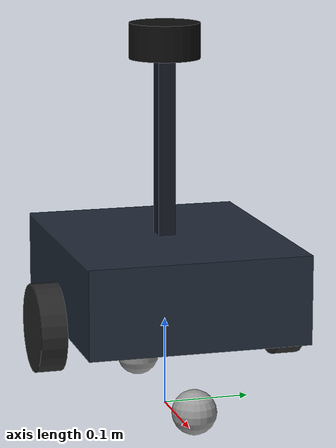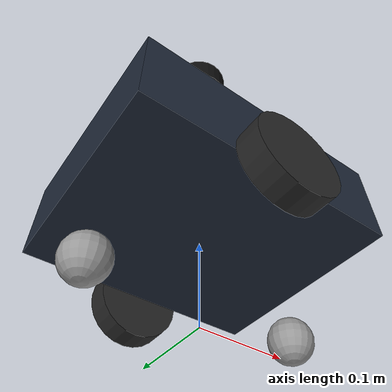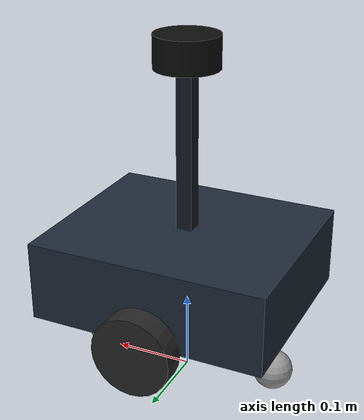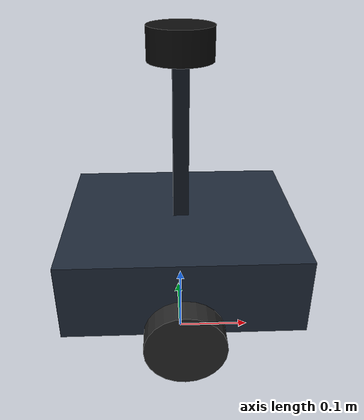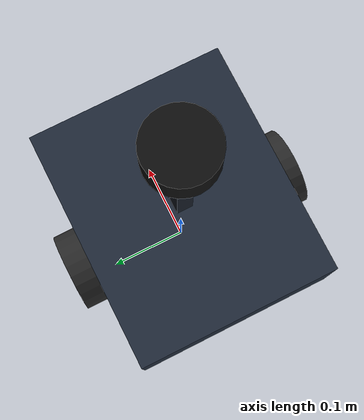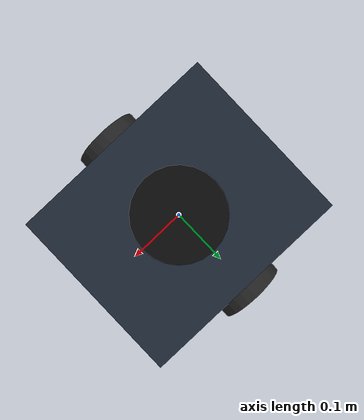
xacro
<?xml version="1.0"?>
<robot name="frontierx_scout" xmlns:xacro="http://www.ros.org/wiki/xacro">

  <!-- ── Parameters ────────────────────────────────────────── -->
  <xacro:include filename="$(find frontierx_robot_description)/urdf/scout_base.xacro"/>
  <xacro:include filename="$(find frontierx_robot_description)/urdf/scout_sensors.xacro"/>
  <xacro:include filename="$(find frontierx_robot_description)/urdf/scout_gazebo.xacro"/>

  <!-- ── Instantiate robot ─────────────────────────────────── -->
  <xacro:frontierx_scout_base/>
  <xacro:frontierx_scout_sensors/>
  <xacro:frontierx_scout_gazebo/>

</robot>

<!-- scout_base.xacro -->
<robot name="frontierx_scout" xmlns:xacro="http://www.ros.org/wiki/xacro">

  <!-- ── Physical Constants ────────────────────────────────── -->
  <xacro:property name="base_length"    value="0.300"/>   <!-- meters, X -->
  <xacro:property name="base_width"     value="0.250"/>   <!-- meters, Y -->
  <xacro:property name="base_height"    value="0.100"/>   <!-- meters, Z -->
  <xacro:property name="base_mass"      value="2.500"/>   <!-- kg -->
  <xacro:property name="base_z_offset"  value="0.100"/>   <!-- base_link above floor -->

  <xacro:property name="wheel_radius"   value="0.050"/>   <!-- meters -->
  <xacro:property name="wheel_width"    value="0.030"/>   <!-- meters -->
  <xacro:property name="wheel_mass"     value="0.200"/>   <!-- kg -->
  <xacro:property name="wheel_sep"      value="0.280"/>   <!-- left-right separation -->
  <xacro:property name="wheel_x_offset" value="0.000"/>   <!-- fore-aft offset from base_link -->

  <xacro:property name="caster_radius"  value="0.025"/>
  <xacro:property name="caster_mass"    value="0.050"/>
  <xacro:property name="caster_x_front" value="0.120"/>   <!-- distance forward from base_link -->
  <xacro:property name="caster_x_rear"  value="-0.120"/>   <!-- distance backward from base_link -->

  <!-- ── Inertia Macros ─────────────────────────────────────── -->
  <xacro:macro name="box_inertia" params="m x y z">
    <inertial>
      <mass value="${m}"/>
      <inertia
        ixx="${m*(y*y+z*z)/12.0}"
        ixy="0" ixz="0"
        iyy="${m*(x*x+z*z)/12.0}"
        iyz="0"
        izz="${m*(x*x+y*y)/12.0}"/>
    </inertial>
  </xacro:macro>

  <xacro:macro name="cylinder_inertia" params="m r h">
    <inertial>
      <mass value="${m}"/>
      <inertia
        ixx="${m*(3*r*r+h*h)/12.0}"
        ixy="0" ixz="0"
        iyy="${m*(3*r*r+h*h)/12.0}"
        iyz="0"
        izz="${m*r*r/2.0}"/>
    </inertial>
  </xacro:macro>

  <xacro:macro name="sphere_inertia" params="m r">
    <inertial>
      <mass value="${m}"/>
      <inertia
        ixx="${2*m*r*r/5.0}"
        ixy="0" ixz="0"
        iyy="${2*m*r*r/5.0}"
        iyz="0"
        izz="${2*m*r*r/5.0}"/>
    </inertial>
  </xacro:macro>

  <!-- ── Wheel Macro ────────────────────────────────────────── -->
  <xacro:macro name="wheel" params="name x_offset y_offset">
    <link name="${name}">
      <xacro:cylinder_inertia m="${wheel_mass}" r="${wheel_radius}" h="${wheel_width}"/>
      <visual>
        <origin xyz="0 0 0" rpy="${pi/2} 0 0"/>
        <geometry>
          <cylinder radius="${wheel_radius}" length="${wheel_width}"/>
        </geometry>
        <material name="wheel_material">
          <color rgba="0.15 0.15 0.15 1.0"/>
        </material>
      </visual>
      <collision>
        <origin xyz="0 0 0" rpy="${pi/2} 0 0"/>
        <geometry>
          <cylinder radius="${wheel_radius}" length="${wheel_width}"/>
        </geometry>
      </collision>
    </link>

    <joint name="${name}_joint" type="continuous">
      <parent link="base_link"/>
      <child link="${name}"/>
      <origin xyz="${x_offset} ${y_offset} 0" rpy="0 0 0"/>
      <axis xyz="0 1 0"/>
      <dynamics damping="0.1" friction="0.5"/>
      <limit effort="10.0" velocity="6.0"/>
    </joint>
  </xacro:macro>

  <!-- ── Caster Macro ───────────────────────────────────────── -->
  <xacro:macro name="caster" params="name x_offset">
    <link name="${name}">
      <xacro:sphere_inertia m="${caster_mass}" r="${caster_radius}"/>
      <visual>
        <geometry>
          <sphere radius="${caster_radius}"/>
        </geometry>
        <material name="caster_material">
          <color rgba="0.6 0.6 0.6 1.0"/>
        </material>
      </visual>
      <collision>
        <geometry>
          <sphere radius="${caster_radius}"/>
        </geometry>
      </collision>
    </link>

    <joint name="${name}_joint" type="fixed">
      <parent link="base_link"/>
      <child link="${name}"/>
      <origin xyz="${x_offset} 0 ${-base_z_offset + caster_radius}" rpy="0 0 0"/>
    </joint>
  </xacro:macro>

  <!-- ── Base Macro ─────────────────────────────────────────── -->
  <xacro:macro name="frontierx_scout_base">

    <!-- base_footprint: virtual link at ground contact center -->
    <link name="base_footprint">
      <visual>
        <geometry><box size="0.001 0.001 0.001"/></geometry>
      </visual>
    </link>

    <joint name="base_footprint_joint" type="fixed">
      <parent link="base_footprint"/>
      <child link="base_link"/>
      <origin xyz="0 0 ${base_z_offset}" rpy="0 0 0"/>
    </joint>

    <!-- base_link: main robot body -->
    <link name="base_link">
      <xacro:box_inertia m="${base_mass}"
                         x="${base_length}"
                         y="${base_width}"
                         z="${base_height}"/>
      <visual>
        <origin xyz="0 0 ${base_height/2}" rpy="0 0 0"/>
        <geometry>
          <box size="${base_length} ${base_width} ${base_height}"/>
        </geometry>
        <material name="chassis_material">
          <!-- FrontierX dark charcoal with slight blue tint -->
          <color rgba="0.12 0.16 0.22 1.0"/>
        </material>
      </visual>
      <collision>
        <origin xyz="0 0 ${base_height/2}" rpy="0 0 0"/>
        <geometry>
          <box size="${base_length} ${base_width} ${base_height}"/>
        </geometry>
      </collision>
    </link>

    <!-- Sensor mast (visual only, structural) -->
    <link name="sensor_mast">
      <visual>
        <origin xyz="0 0 0.10" rpy="0 0 0"/>
        <geometry>
          <box size="0.020 0.020 0.200"/>
        </geometry>
        <material name="mast_material">
          <color rgba="0.08 0.10 0.14 1.0"/>
        </material>
      </visual>
      <collision>
        <origin xyz="0 0 0.10" rpy="0 0 0"/>
        <geometry>
          <box size="0.020 0.020 0.200"/>
        </geometry>
      </collision>
      <inertial>
        <mass value="0.100"/>
        <inertia ixx="0.0001" ixy="0" ixz="0" iyy="0.0001" iyz="0" izz="0.00005"/>
      </inertial>
    </link>

    <joint name="sensor_mast_joint" type="fixed">
      <parent link="base_link"/>
      <child link="sensor_mast"/>
      <origin xyz="0.0 0.0 ${base_height}" rpy="0 0 0"/>
    </joint>

    <!-- Drive wheels -->
    <xacro:wheel name="wheel_left_link"
                 x_offset="${wheel_x_offset}"
                 y_offset="${wheel_sep/2}"/>

    <xacro:wheel name="wheel_right_link"
                 x_offset="${wheel_x_offset}"
                 y_offset="${-wheel_sep/2}"/>

    <!-- Caster wheels -->
    <xacro:caster name="caster_front_link" x_offset="${caster_x_front}"/>
    <xacro:caster name="caster_rear_link"  x_offset="${caster_x_rear}"/>

    <!-- ros2_control interface -->
    <ros2_control name="frontierx_scout_control" type="system">
      <hardware>
        <!-- Simulation: use Isaac Sim plugin or Gazebo -->
        <plugin>frontierx_control/ScoutHardwareInterface</plugin>
        <param name="wheel_separation">${wheel_sep}</param>
        <param name="wheel_radius">${wheel_radius}</param>
      </hardware>

      <joint name="wheel_left_link_joint">
        <command_interface name="velocity">
          <param name="min">-6.0</param>
          <param name="max">6.0</param>
        </command_interface>
        <state_interface name="position"/>
        <state_interface name="velocity"/>
      </joint>

      <joint name="wheel_right_link_joint">
        <command_interface name="velocity">
          <param name="min">-6.0</param>
          <param name="max">6.0</param>
        </command_interface>
        <state_interface name="position"/>
        <state_interface name="velocity"/>
      </joint>
    </ros2_control>

  </xacro:macro>

</robot>

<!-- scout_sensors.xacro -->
<robot name="frontierx_scout" xmlns:xacro="http://www.ros.org/wiki/xacro">

  <!-- ── Sensor Position Constants ────────────────────────── -->
  <!-- LiDAR: mounted at top of sensor mast -->
  <xacro:property name="lidar_x"   value="0.0"/>
  <xacro:property name="lidar_y"   value="0.0"/>
  <xacro:property name="lidar_z"   value="0.020"/>   <!-- above mast top -->

  <!-- RGB / Depth Camera: front of chassis, mid-height -->
  <xacro:property name="camera_x"  value="0.135"/>
  <xacro:property name="camera_y"  value="0.0"/>
  <xacro:property name="camera_z"  value="0.070"/>

  <!-- IMU: center of base_link -->
  <xacro:property name="imu_x"     value="0.0"/>
  <xacro:property name="imu_y"     value="0.0"/>
  <xacro:property name="imu_z"     value="0.010"/>

  <!-- ── Sensor Noise Parameters ───────────────────────────── -->
  <!-- LiDAR — equivalent to RPLIDAR A2 / Sick TiM551 -->
  <xacro:property name="lidar_range_min"        value="0.120"/>    <!-- meters -->
  <xacro:property name="lidar_range_max"        value="12.000"/>   <!-- meters -->
  <xacro:property name="lidar_samples"          value="360"/>
  <xacro:property name="lidar_update_rate"      value="10.0"/>     <!-- Hz -->
  <xacro:property name="lidar_noise_mean"       value="0.0"/>
  <xacro:property name="lidar_noise_stddev"     value="0.01"/>     <!-- meters -->

  <!-- RGB Camera — 1280×720, 30 FPS, 69° HFOV -->
  <xacro:property name="camera_hfov"            value="1.204"/>    <!-- radians ~69° -->
  <xacro:property name="camera_width"           value="1280"/>
  <xacro:property name="camera_height"          value="720"/>
  <xacro:property name="camera_fps"             value="30"/>

  <!-- Depth Camera — 640×480, 30 FPS, 0.3m–3.0m -->
  <xacro:property name="depth_hfov"             value="1.047"/>    <!-- radians ~60° -->
  <xacro:property name="depth_width"            value="640"/>
  <xacro:property name="depth_height"           value="480"/>
  <xacro:property name="depth_fps"              value="30"/>
  <xacro:property name="depth_near"             value="0.300"/>
  <xacro:property name="depth_far"              value="3.000"/>

  <!-- IMU — 6-DOF, 100 Hz, modeled after MPU-6050 class -->
  <xacro:property name="imu_rate"               value="100"/>
  <xacro:property name="imu_gyro_noise"         value="0.00014"/>  <!-- rad/s/sqrt(Hz) -->
  <xacro:property name="imu_accel_noise"        value="0.0016"/>   <!-- m/s²/sqrt(Hz) -->
  <xacro:property name="imu_gyro_bias"          value="0.0001"/>
  <xacro:property name="imu_accel_bias"         value="0.0002"/>

  <!-- ── Sensors Macro ─────────────────────────────────────── -->
  <xacro:macro name="frontierx_scout_sensors">

    <!-- ║   2D LiDAR — laser_frame           ║ -->
    <link name="laser_frame">
      <visual>
        <origin xyz="0 0 0" rpy="0 0 0"/>
        <geometry>
          <cylinder radius="0.040" length="0.040"/>
        </geometry>
        <material name="lidar_material">
          <color rgba="0.05 0.05 0.05 1.0"/>
        </material>
      </visual>
      <collision>
        <origin xyz="0 0 0" rpy="0 0 0"/>
        <geometry>
          <cylinder radius="0.040" length="0.040"/>
        </geometry>
      </collision>
      <inertial>
        <mass value="0.180"/>
        <inertia ixx="0.0001" ixy="0" ixz="0" iyy="0.0001" iyz="0" izz="0.0001"/>
      </inertial>
    </link>

    <joint name="laser_frame_joint" type="fixed">
      <parent link="sensor_mast"/>
      <child link="laser_frame"/>
      <!-- sensor_mast top is at z=0.200; LiDAR sits on top -->
      <origin xyz="${lidar_x} ${lidar_y} 0.220" rpy="0 0 0"/>
    </joint>

    <!-- ║   RGB Camera — camera_link         ║ -->
    <link name="camera_link">
      <visual>
        <origin xyz="0 0 0" rpy="0 0 0"/>
        <geometry>
          <box size="0.025 0.090 0.025"/>
        </geometry>
        <material name="camera_material">
          <color rgba="0.08 0.08 0.10 1.0"/>
        </material>
      </visual>
      <collision>
        <origin xyz="0 0 0" rpy="0 0 0"/>
        <geometry>
          <box size="0.025 0.090 0.025"/>
        </geometry>
      </collision>
      <inertial>
        <mass value="0.070"/>
        <inertia ixx="0.0001" ixy="0" ixz="0" iyy="0.0001" iyz="0" izz="0.0001"/>
      </inertial>
    </link>

    <joint name="camera_joint" type="fixed">
      <parent link="base_link"/>
      <child link="camera_link"/>
      <origin xyz="${camera_x} ${camera_y} ${camera_z}" rpy="0 0 0"/>
    </joint>

    <!-- camera optical frame: REP-103 convention (Z forward, X right, Y down) -->
    <link name="camera_optical_frame"/>
    <joint name="camera_optical_joint" type="fixed">
      <parent link="camera_link"/>
      <child link="camera_optical_frame"/>
      <origin xyz="0 0 0" rpy="${-pi/2} 0 ${-pi/2}"/>
    </joint>

    <!-- ║   Depth Camera — camera_depth_frame║ -->
    <!-- Depth camera is co-located with RGB, slight horizontal offset -->
    <link name="camera_depth_frame">
      <visual>
        <geometry>
          <box size="0.001 0.001 0.001"/>
        </geometry>
      </visual>
    </link>

    <joint name="camera_depth_joint" type="fixed">
      <parent link="camera_link"/>
      <child link="camera_depth_frame"/>
      <!-- slight left offset for baseline (like RealSense D435i) -->
      <origin xyz="0 0.015 0" rpy="0 0 0"/>
    </joint>

    <!-- depth optical frame -->
    <link name="camera_depth_optical_frame"/>
    <joint name="camera_depth_optical_joint" type="fixed">
      <parent link="camera_depth_frame"/>
      <child link="camera_depth_optical_frame"/>
      <origin xyz="0 0 0" rpy="${-pi/2} 0 ${-pi/2}"/>
    </joint>

    <!-- ║   IMU — imu_link                   ║ -->
    <link name="imu_link">
      <visual>
        <origin xyz="0 0 0" rpy="0 0 0"/>
        <geometry>
          <box size="0.020 0.020 0.005"/>
        </geometry>
        <material name="imu_material">
          <color rgba="0.0 0.5 0.8 1.0"/>
        </material>
      </visual>
      <collision>
        <geometry>
          <box size="0.020 0.020 0.005"/>
        </geometry>
      </collision>
      <inertial>
        <mass value="0.010"/>
        <inertia ixx="0.000001" ixy="0" ixz="0" iyy="0.000001" iyz="0" izz="0.000001"/>
      </inertial>
    </link>

    <joint name="imu_joint" type="fixed">
      <parent link="base_link"/>
      <child link="imu_link"/>
      <origin xyz="${imu_x} ${imu_y} ${imu_z}" rpy="0 0 0"/>
    </joint>

  </xacro:macro>

</robot>
